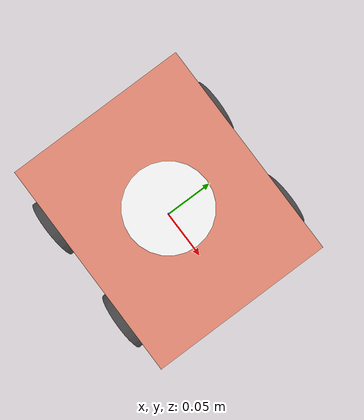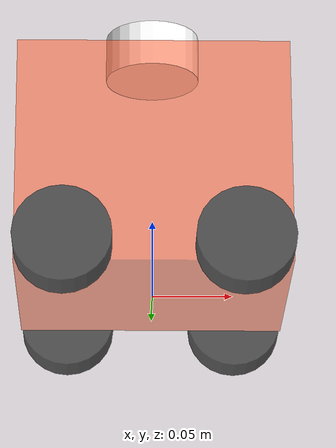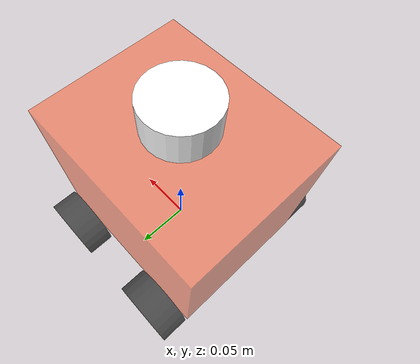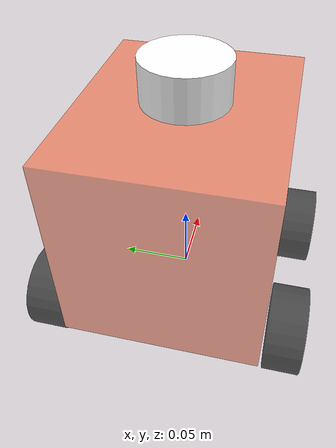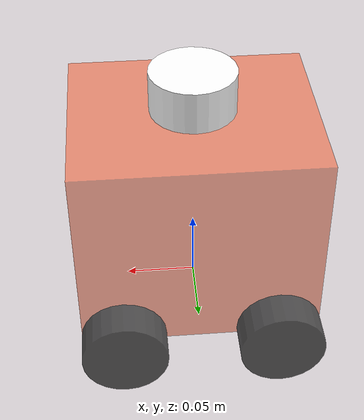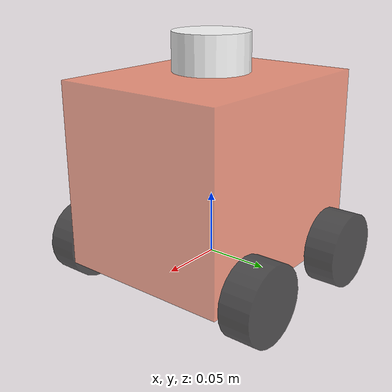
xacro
<?xml version="1.0"?>
<robot xmlns:xacro="http://www.ros.org/wiki/xacro"  name="robot">

    <xacro:include filename="$(find fishbot_description)/urdf/rosmaze_bot/rprobot_core.urdf.xacro" />

    <xacro:include filename="$(find fishbot_description)/urdf/rosmaze_bot/sensor/laser.urdf.xacro" />
    <xacro:include filename="$(find fishbot_description)/urdf/rosmaze_bot/sensor/imu.urdf.xacro" />

    <xacro:include filename="$(find fishbot_description)/urdf/rosmaze_bot/actuator/wheel.urdf.xacro" />

    <xacro:include filename="$(find fishbot_description)/urdf/rosmaze_bot/plugins/gazebo_sensor_plugins.xacro" />

    <xacro:include filename="$(find fishbot_description)/urdf/rosmaze_bot/rprobot.ros2_control.xacro" />

    <xacro:laser_xacro xyz="0.0 0.0 0.09" />
    <xacro:imu_xacro xyz="0.025 0.038 0" />

    <xacro:wheel_xacro wheel_name="front_right_wheel" xyz="0.055 -0.085 -0.065" />
    <xacro:wheel_xacro wheel_name="front_left_wheel" xyz="0.055 0.085 -0.065" />
    <xacro:wheel_xacro wheel_name="back_right_wheel" xyz="-0.055 -0.085 -0.065" />
    <xacro:wheel_xacro wheel_name="back_left_wheel" xyz="-0.055 0.085 -0.065" />

    <xacro:gazebo_sensor_plugin />
    <xacro:rprobot_ros2_control />
</robot>

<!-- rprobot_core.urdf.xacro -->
<robot xmlns:xacro="http://www.ros.org/wiki/xacro" >
    <xacro:include filename="$(find fishbot_description)/urdf/rosmaze_bot/common_intertia.xacro" />
    <!-- COLOR DEFAND -->
    <material name="white">
        <color rgba="1 1 1 1" />
    </material>

    <material name="orange">
        <color rgba="1 0.3 0.1 0.5"/>
    </material>

    <material name="blue">
        <color rgba="0.2 0.2 1 1"/>
    </material>

    <material name="black">
        <color rgba="0 0 0 1"/>
    </material>

    <!-- BASE_FOOTPRINT LINK -->

        <link name="base_footprint">
        </link>

        <joint name="base_footprint_joint" type="fixed">
            <parent link="base_footprint"/>
            <child link="base_link"/>
            <origin xyz="0 0 0.0725" rpy="0 0 0"/>
        </joint>

    <!-- BASE LINK -->
        <link name="base_link">
            <visual>
                <origin xyz="0 0 0"/>
                <geometry>
                    <box size="0.17 0.14 0.145"/>
                </geometry>
                <material name="orange"/>
            </visual>

            <collision>
                <origin xyz="0 0 0"/>
                <geometry>
                    <box size="0.17 0.14 0.145"/>
                </geometry>
                <material name="orange"/>
            </collision>

            <xacro:box_inertia m="0.1" w="0.17" h="0.14" d="0.145" />
        </link>
        <gazebo reference="base_link">
            <material>Gazebo/Orange</material>
        </gazebo>
</robot>

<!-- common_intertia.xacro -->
<robot xmlns:xacro="http://ros.org/wiki/xacro">

    <!-- 矩形慣性矩陣 -->
    <xacro:macro name="box_inertia" params="m w h d">
        <inertial>
            <mass value="${m}" />
            <inertia ixx="${(m/12) * (h*h + d*d)}" ixy="0.0" ixz="0.0" iyy="${(m/12) * (w*w + d*d)}" iyz="0.0" izz="${(m/12) * (w*w + h*h)}" />
        </inertial>
    </xacro:macro>

    <!-- 圓柱形慣性矩陣 -->
    <xacro:macro name="cylinder_inertia" params="m r h">
        <inertial>
            <mass value="${m}" />
            <inertia ixx="${(m/12) * (3*r*r + h*h)}" ixy="0" ixz="0" iyy="${(m/12) * (3*r*r + h*h)}" iyz="0" izz="${(m/2) * (r*r)}" />
        </inertial>
    </xacro:macro>

    <!-- 球形慣性矩陣 -->
    <xacro:macro name="sphere_inertia" params="m r">
        <inertial>
            <mass value="${m}" />
            <inertia ixx="${(2/5) * m * (r*r)}" ixy="0.0" ixz="0.0" iyy="${(2/5) * m * (r*r)}" iyz="0.0" izz="${(2/5) * m * (r*r)}" />
        </inertial>
    </xacro:macro>

</robot>

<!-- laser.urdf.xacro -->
<robot xmlns:xacro="http://www.ros.org/wiki/xacro">
    <xacro:include filename="$(find fishbot_description)/urdf/rosmaze_bot/common_intertia.xacro" />
        <xacro:macro name="laser_xacro" params="xyz">
        <!-- 雷達 -->
            <link name="laser_link">
            <!-- 部件的外觀描述 -->
            <visual>

                <!-- 沿著自己集合中心的偏移與旋轉量 -->
                <origin xyz="0 0 0" rpy="0 0 0" />

                <!-- 幾何形狀 -->
                <geometry>
                    <cylinder radius="0.030" length="0.030"/>
                </geometry>

                <!-- 材質顏色 -->
                <material name="white">
                    <color rgba="1.0 1.0 1.0 1.0"/>
                </material>
            </visual>

            <collision>
                <origin xyz="0 0 0"/>
                <geometry>
                    <cylinder length="0.030" radius="0.030"/>
                </geometry>
            </collision>

            <xacro:cylinder_inertia m="0.1" r="0.03" h="0.14" />
        </link>

        <!-- 把雷達固定到機器人上 -->
        <joint name="laser_joint" type="fixed">
            <parent link="base_link"/>
            <child link="laser_link"/>
            <origin xyz="${xyz}" rpy="0.0 0.0 0.0"/>
        </joint>

        <gazebo reference="laser_joint">
            <material>Gazebo/White</material>
        </gazebo>
    </xacro:macro>
</robot>

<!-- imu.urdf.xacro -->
<robot xmlns:xacro="http://www.ros.org/wiki/xacro">
    <xacro:include filename="$(find fishbot_description)/urdf/rosmaze_bot/common_intertia.xacro" />
        <xacro:macro name="imu_xacro" params="xyz">
        <!-- 機器人的IMU部件 慣性測量感測器 -->
            <link name="imu_link">
            <!-- 部件的外觀描述 -->
            <visual>

                <!-- 沿著自己集合中心的偏移與旋轉量 -->
                <origin xyz="0 0 0" rpy="0 0 0" />

                <!-- 幾何形狀 -->
                <geometry>
                    <box size="0.05 0.05 0.01"/>
                </geometry>

                <!-- 材質顏色 -->
                <material name="orange">
                    <color rgba="1.0 0.3 0.1 0.5"/>
                </material>
            </visual>
            <collision>
                <origin xyz="0 0 0" rpy="0 0 0" />
                <geometry>
                    <box size="0.05 0.05 0.01"/>
                </geometry>
                <material name="orange">
                    <color rgba="1.0 0.3 0.1 0.5"/>
                </material>
            </collision>

            <xacro:box_inertia m="0.05" w="0.05" h="0.05" d="0.01" />
        </link>

        <!-- 機器人的關節 用於機器人的部件 -->
        <joint name="imu_joint" type="fixed">
            <parent link="base_link"/>
            <child link="imu_link"/>
            <origin xyz="${xyz}" rpy="0.0 0.0 0.0"/>
        </joint>

        <gazebo reference="imu_joint">
            <material>Gazebo/Orange</material>
        </gazebo>
    </xacro:macro>

</robot>

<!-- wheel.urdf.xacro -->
<robot xmlns:xacro="http://www.ros.org/wiki/xacro">
    <xacro:include filename="$(find fishbot_description)/urdf/rosmaze_bot/common_intertia.xacro" />
        <xacro:macro name="wheel_xacro" params="wheel_name xyz">
        <!-- 機器人的IMU部件 慣性測量感測器 -->
            <link name="${wheel_name}_link">
            <!-- 部件的外觀描述 -->
            <visual>

                <!-- 沿著自己集合中心的偏移與旋轉量 -->
                <origin xyz="0.0 0.0 0.0" rpy="1.57079 0.0 0.0" />

                <!-- 幾何形狀 -->
                <geometry>
                    <cylinder radius="0.03" length="0.025"/>
                </geometry>

                <!-- 材質顏色 -->
                <material name="gray">
                    <color rgba="0.2 0.2 0.2 0.8"/>
                </material>
            </visual>

            <collision>
            <origin xyz="0.0 0.0 0.0" rpy="1.57079 0.0 0.0" />
                <geometry>
                    <cylinder radius="0.03" length="0.025"/>
                </geometry>
                <material name="gray">
                    <color rgba="0.2 0.2 0.2 0.8"/>
                </material>
            </collision>

            <xacro:cylinder_inertia m="0.05" r="0.03" h="0.025" />
        </link>

        <!-- 機器人的關節 用於機器人的部件 -->
        <!-- continuous 可轉動關節 -->
        <joint name="${wheel_name}_joint" type="continuous">
            <parent link="base_link"/>
            <child link="${wheel_name}_link"/>
            <origin xyz="${xyz}" rpy="0.0 0.0 0.0"/>
            <!-- axis 沿著某軸旋轉 這裡是沿著y軸旋轉 -->
            <axis xyz="0 1 0"/>
        </joint>

        <gazebo reference="${wheel_name}_link">
            <mu1 value="20.0"/> <!--切向摩擦係數 -->
            <mu2 value="20.0"/> <!--法向摩擦係數-->
            <kp value="1000000000.0"/> <!--鋼度係數-->
            <kd value="1.0"/> <!--阻尼係數-->
        </gazebo>
    </xacro:macro>

</robot>
